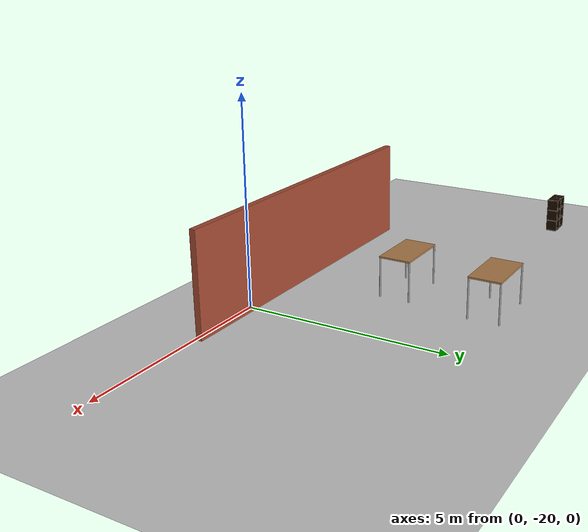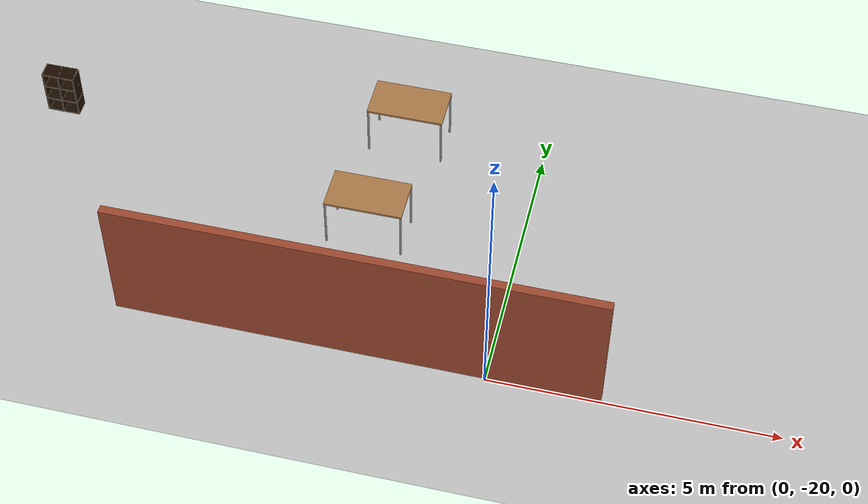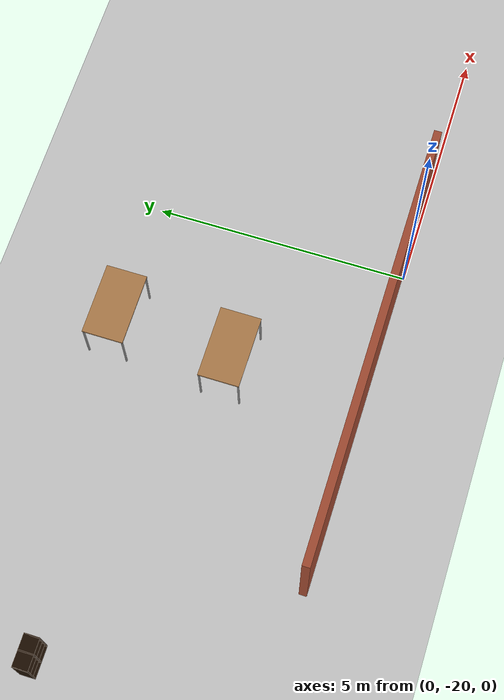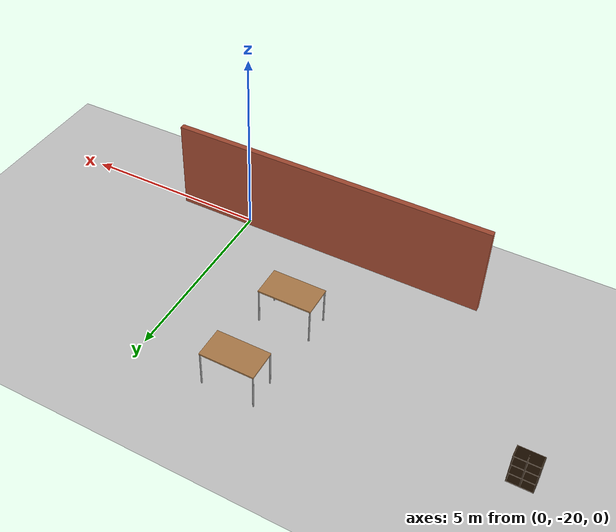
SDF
<sdf version="1.6">
 <world name="default">
  <model name="ground_plane">
   <static>1</static>
   <link name="link">
    <collision name="collision">
     <geometry><plane><normal>0 0 1</normal><size>100 100</size></plane></geometry>
     <surface><friction><ode><mu>100</mu><mu2>50</mu2></ode></friction></surface>
    </collision>
    <visual name="visual">
     <cast_shadows>0</cast_shadows>
     <geometry><plane><normal>0 0 1</normal><size>100 100</size></plane></geometry>
     <material>
      <script><uri>file://media/materials/scripts/gazebo.material</uri><name>Gazebo/Grey</name></script>
     </material>
    </visual>
   </link>
  </model>
  <model name="vital">
   <pose>1.2398 -2.19799 0 0 -0 0</pose>
   <link name="Wall_118">
    <collision name="Wall_118_Collision">
     <geometry><box><size>8.5 0.15 2.5</size></box></geometry>
     <pose>0 0 1.25 0 -0 0</pose>
    </collision>
    <visual name="Wall_118_Visual">
     <pose>0 0 1.25 0 -0 0</pose>
     <geometry><box><size>8.5 0.15 2.5</size></box></geometry>
     <material>
      <script><uri>file://media/materials/scripts/gazebo.material</uri><name>Gazebo/Bricks</name></script>
      <ambient>1 1 1 1</ambient>
     </material>
    </visual>
    <pose>-3.51851 -17.7063 0 0 -0 3.14159</pose>
   </link>
   <static>1</static>
  </model>
  <model name="table">
   <static>0</static>
   <link name="link">
    <collision name="surface">
     <pose>0 0 1 0 -0 0</pose>
     <geometry><box><size>1.5 0.8 0.03</size></box></geometry>
     <surface><friction><ode><mu>0.6</mu><mu2>0.6</mu2></ode></friction></surface>
    </collision>
    <visual name="visual1">
     <pose>0 0 1 0 -0 0</pose>
     <geometry><box><size>1.4 0.8 0.04</size></box></geometry>
     <material>
      <script><uri>file://media/materials/scripts/gazebo.material</uri><name>Gazebo/Wood</name></script>
     </material>
    </visual>
    <collision name="front_left_leg">
     <pose>0.68 0.38 0.5 0 -0 0</pose>
     <geometry><cylinder><radius>0.02</radius><length>1</length></cylinder></geometry>
    </collision>
    <visual name="front_left_leg">
     <pose>0.68 0.38 0.5 0 -0 0</pose>
     <geometry><cylinder><radius>0.02</radius><length>1</length></cylinder></geometry>
     <material>
      <script><uri>file://media/materials/scripts/gazebo.material</uri><name>Gazebo/Grey</name></script>
     </material>
    </visual>
    <collision name="front_right_leg">
     <pose>0.68 -0.38 0.5 0 -0 0</pose>
     <geometry><cylinder><radius>0.02</radius><length>1</length></cylinder></geometry>
    </collision>
    <visual name="front_right_leg">
     <pose>0.68 -0.38 0.5 0 -0 0</pose>
     <geometry><cylinder><radius>0.02</radius><length>1</length></cylinder></geometry>
     <material>
      <script><uri>file://media/materials/scripts/gazebo.material</uri><name>Gazebo/Grey</name></script>
     </material>
    </visual>
    <collision name="back_right_leg">
     <pose>-0.68 -0.38 0.5 0 -0 0</pose>
     <geometry><cylinder><radius>0.02</radius><length>1</length></cylinder></geometry>
    </collision>
    <visual name="back_right_leg">
     <pose>-0.68 -0.38 0.5 0 -0 0</pose>
     <geometry><cylinder><radius>0.02</radius><length>1</length></cylinder></geometry>
     <material>
      <script><uri>file://media/materials/scripts/gazebo.material</uri><name>Gazebo/Grey</name></script>
     </material>
    </visual>
    <collision name="back_left_leg">
     <pose>-0.68 0.38 0.5 0 -0 0</pose>
     <geometry><cylinder><radius>0.02</radius><length>1</length></cylinder></geometry>
    </collision>
    <visual name="back_left_leg">
     <pose>-0.68 0.38 0.5 0 -0 0</pose>
     <geometry><cylinder><radius>0.02</radius><length>1</length></cylinder></geometry>
     <material>
      <script><uri>file://media/materials/scripts/gazebo.material</uri><name>Gazebo/Grey</name></script>
     </material>
    </visual>
    <inertial>
     <inertia><ixx>1</ixx><ixy>0</ixy><ixz>0</ixz><iyy>1</iyy><iyz>0</iyz><izz>1</izz></inertia>
     <mass>1</mass>
    </inertial>
   </link>
   <pose>-2.70683 -17.3168 -1e-06 0 1e-06 0</pose>
  </model>
  <model name="table_0">
   <static>0</static>
   <link name="link">
    <collision name="surface">
     <pose>0 0 1 0 -0 0</pose>
     <geometry><box><size>1.5 0.8 0.03</size></box></geometry>
     <surface><friction><ode><mu>0.6</mu><mu2>0.6</mu2></ode></friction></surface>
    </collision>
    <visual name="visual1">
     <pose>0 0 1 0 -0 0</pose>
     <geometry><box><size>1.4 0.8 0.04</size></box></geometry>
     <material>
      <script><uri>file://media/materials/scripts/gazebo.material</uri><name>Gazebo/Wood</name></script>
     </material>
    </visual>
    <collision name="front_left_leg">
     <pose>0.68 0.38 0.5 0 -0 0</pose>
     <geometry><cylinder><radius>0.02</radius><length>1</length></cylinder></geometry>
    </collision>
    <visual name="front_left_leg">
     <pose>0.68 0.38 0.5 0 -0 0</pose>
     <geometry><cylinder><radius>0.02</radius><length>1</length></cylinder></geometry>
     <material>
      <script><uri>file://media/materials/scripts/gazebo.material</uri><name>Gazebo/Grey</name></script>
     </material>
    </visual>
    <collision name="front_right_leg">
     <pose>0.68 -0.38 0.5 0 -0 0</pose>
     <geometry><cylinder><radius>0.02</radius><length>1</length></cylinder></geometry>
    </collision>
    <visual name="front_right_leg">
     <pose>0.68 -0.38 0.5 0 -0 0</pose>
     <geometry><cylinder><radius>0.02</radius><length>1</length></cylinder></geometry>
     <material>
      <script><uri>file://media/materials/scripts/gazebo.material</uri><name>Gazebo/Grey</name></script>
     </material>
    </visual>
    <collision name="back_right_leg">
     <pose>-0.68 -0.38 0.5 0 -0 0</pose>
     <geometry><cylinder><radius>0.02</radius><length>1</length></cylinder></geometry>
    </collision>
    <visual name="back_right_leg">
     <pose>-0.68 -0.38 0.5 0 -0 0</pose>
     <geometry><cylinder><radius>0.02</radius><length>1</length></cylinder></geometry>
     <material>
      <script><uri>file://media/materials/scripts/gazebo.material</uri><name>Gazebo/Grey</name></script>
     </material>
    </visual>
    <collision name="back_left_leg">
     <pose>-0.68 0.38 0.5 0 -0 0</pose>
     <geometry><cylinder><radius>0.02</radius><length>1</length></cylinder></geometry>
    </collision>
    <visual name="back_left_leg">
     <pose>-0.68 0.38 0.5 0 -0 0</pose>
     <geometry><cylinder><radius>0.02</radius><length>1</length></cylinder></geometry>
     <material>
      <script><uri>file://media/materials/scripts/gazebo.material</uri><name>Gazebo/Grey</name></script>
     </material>
    </visual>
    <inertial>
     <inertia><ixx>1</ixx><ixy>0</ixy><ixz>0</ixz><iyy>1</iyy><iyz>0</iyz><izz>1</izz></inertia>
     <mass>1</mass>
    </inertial>
   </link>
   <pose>-2.52923 -14.9943 -7e-06 -1e-06 0 0</pose>
  </model>
  <model name="6_Cube_StorageE">
   <link name="Wall_0">
    <pose>0 0 0.01 0 -0 0</pose>
    <inertial>
     <mass>1.6201</mass>
     <inertia><ixx>0.0119</ixx><iyy>0.0631</iyy><izz>0.0513</izz><ixy>0</ixy><ixz>0</ixz><iyz>0</iyz></inertia>
    </inertial>
    <collision name="Wall_0_Collision"><geometry><box><size>0.616 0.296 0.02</size></box></geometry></collision>
    <visual name="Wall_0_Visual">
     <geometry><box><size>0.616 0.296 0.02</size></box></geometry>
     <material>
      <script><uri>file://media/materials/scripts/gazebo.material</uri><name>Gazebo/Grey</name></script>
      <ambient>0.105882 0.0509804 0 1</ambient>
     </material>
    </visual>
   </link>
   <joint name="0_2" type="fixed">
    <pose>-0.308 0 0 0 -0 0</pose>
    <parent>Wall_2</parent>
    <child>Wall_0</child>
    <axis>
     <xyz>1 0 0</xyz>
     <use_parent_model_frame>0</use_parent_model_frame>
     <limit><lower>-1e+16</lower><upper>1e+16</upper></limit>
    </axis>
   </joint>
   <joint name="0_12" type="fixed">
    <parent>Wall_12</parent>
    <child>Wall_0</child>
    <axis>
     <xyz>0 0 1</xyz>
     <use_parent_model_frame>0</use_parent_model_frame>
     <limit><lower>-1e+16</lower><upper>1e+16</upper></limit>
    </axis>
   </joint>
   <joint name="0_4" type="fixed">
    <pose>0.308 0 0 0 -0 0</pose>
    <parent>Wall_4</parent>
    <child>Wall_0</child>
    <axis>
     <xyz>1 0 0</xyz>
     <use_parent_model_frame>0</use_parent_model_frame>
     <limit><lower>-1e+16</lower><upper>1e+16</upper></limit>
    </axis>
   </joint>
   <link name="Wall_10">
    <pose>0 0 0.61 0 -0 0</pose>
    <inertial>
     <mass>1.6201</mass>
     <inertia><ixx>0.0119</ixx><iyy>0.0631</iyy><izz>0.0513</izz><ixy>0</ixy><ixz>0</ixz><iyz>0</iyz></inertia>
    </inertial>
    <collision name="Wall_10_Collision"><geometry><box><size>0.616 0.296 0.02</size></box></geometry></collision>
    <visual name="Wall_10_Visual">
     <geometry><box><size>0.616 0.296 0.02</size></box></geometry>
     <material>
      <script><uri>file://media/materials/scripts/gazebo.material</uri><name>Gazebo/Grey</name></script>
      <ambient>0.105882 0.0509804 0 1</ambient>
     </material>
    </visual>
   </link>
   <joint name="10_2" type="fixed">
    <pose>-0.308 0 0 0 -0 0</pose>
    <parent>Wall_2</parent>
    <child>Wall_10</child>
    <axis>
     <xyz>1 0 0</xyz>
     <use_parent_model_frame>0</use_parent_model_frame>
     <limit><lower>-1e+16</lower><upper>1e+16</upper></limit>
    </axis>
   </joint>
   <joint name="10_12" type="fixed">
    <parent>Wall_12</parent>
    <child>Wall_10</child>
    <axis>
     <xyz>0 0 1</xyz>
     <use_parent_model_frame>0</use_parent_model_frame>
     <limit><lower>-1e+16</lower><upper>1e+16</upper></limit>
    </axis>
   </joint>
   <joint name="10_4" type="fixed">
    <pose>0.308 0 0 0 -0 0</pose>
    <parent>Wall_4</parent>
    <child>Wall_10</child>
    <axis>
     <xyz>1 0 0</xyz>
     <use_parent_model_frame>0</use_parent_model_frame>
     <limit><lower>-1e+16</lower><upper>1e+16</upper></limit>
    </axis>
   </joint>
   <link name="Wall_12">
    <pose>0 0 0.4575 0 -0 0</pose>
    <inertial>
     <mass>2.4065</mass>
     <inertia><ixx>0.0177</ixx><iyy>0.1855</iyy><izz>0.168</izz><ixy>0</ixy><ixz>0</ixz><iyz>0</iyz></inertia>
    </inertial>
    <collision name="Wall_12_Collision"><geometry><box><size>0.02 0.296 0.915</size></box></geometry></collision>
    <visual name="Wall_12_Visual">
     <geometry><box><size>0.02 0.296 0.915</size></box></geometry>
     <material>
      <script><uri>file://media/materials/scripts/gazebo.material</uri><name>Gazebo/Grey</name></script>
      <ambient>0.105882 0.0509804 0 1</ambient>
     </material>
    </visual>
   </link>
   <link name="Wall_2">
    <pose>-0.298 0 0.4575 0 -0 0</pose>
    <inertial>
     <mass>2.4065</mass>
     <inertia><ixx>0.0177</ixx><iyy>0.1855</iyy><izz>0.168</izz><ixy>0</ixy><ixz>0</ixz><iyz>0</iyz></inertia>
    </inertial>
    <collision name="Wall_2_Collision"><geometry><box><size>0.02 0.296 0.915</size></box></geometry></collision>
    <visual name="Wall_2_Visual">
     <geometry><box><size>0.02 0.296 0.915</size></box></geometry>
     <material>
      <script><uri>file://media/materials/scripts/gazebo.material</uri><name>Gazebo/Grey</name></script>
      <ambient>0.105882 0.0509804 0 1</ambient>
     </material>
    </visual>
   </link>
   <link name="Wall_4">
    <pose>0.298 0 0.4575 0 -0 0</pose>
    <inertial>
     <mass>2.4065</mass>
     <inertia><ixx>0.0177</ixx><iyy>0.1855</iyy><izz>0.168</izz><ixy>0</ixy><ixz>0</ixz><iyz>0</iyz></inertia>
    </inertial>
    <collision name="Wall_4_Collision"><geometry><box><size>0.02 0.296 0.915</size></box></geometry></collision>
    <visual name="Wall_4_Visual">
     <geometry><box><size>0.02 0.296 0.915</size></box></geometry>
     <material>
      <script><uri>file://media/materials/scripts/gazebo.material</uri><name>Gazebo/Grey</name></script>
      <ambient>0.105882 0.0509804 0 1</ambient>
     </material>
    </visual>
   </link>
   <link name="Wall_6">
    <pose>0 0 0.905 0 -0 0</pose>
    <inertial>
     <mass>1.6201</mass>
     <inertia><ixx>0.0119</ixx><iyy>0.0631</iyy><izz>0.0513</izz><ixy>0</ixy><ixz>0</ixz><iyz>0</iyz></inertia>
    </inertial>
    <collision name="Wall_6_Collision"><geometry><box><size>0.616 0.296 0.02</size></box></geometry></collision>
    <visual name="Wall_6_Visual">
     <geometry><box><size>0.616 0.296 0.02</size></box></geometry>
     <material>
      <script><uri>file://media/materials/scripts/gazebo.material</uri><name>Gazebo/Grey</name></script>
      <ambient>0.105882 0.0509804 0 1</ambient>
     </material>
    </visual>
   </link>
   <joint name="6_2" type="fixed">
    <pose>-0.308 0 0 0 -0 0</pose>
    <parent>Wall_2</parent>
    <child>Wall_6</child>
    <axis>
     <xyz>2 0 0</xyz>
     <use_parent_model_frame>0</use_parent_model_frame>
     <limit><lower>-1e+16</lower><upper>1e+16</upper></limit>
    </axis>
   </joint>
   <joint name="6_12" type="fixed">
    <parent>Wall_12</parent>
    <child>Wall_6</child>
    <axis>
     <xyz>0 0 1</xyz>
     <use_parent_model_frame>0</use_parent_model_frame>
     <limit><lower>-1e+16</lower><upper>1e+16</upper></limit>
    </axis>
   </joint>
   <joint name="6_4" type="fixed">
    <pose>0.308 0 0 0 -0 0</pose>
    <parent>Wall_4</parent>
    <child>Wall_6</child>
    <axis>
     <xyz>1 0 0</xyz>
     <use_parent_model_frame>0</use_parent_model_frame>
     <limit><lower>-1e+16</lower><upper>1e+16</upper></limit>
    </axis>
   </joint>
   <link name="Wall_8">
    <pose>0 0 0.305 0 -0 0</pose>
    <inertial>
     <mass>1.6201</mass>
     <inertia><ixx>0.0119</ixx><iyy>0.0631</iyy><izz>0.0513</izz><ixy>0</ixy><ixz>0</ixz><iyz>0</iyz></inertia>
    </inertial>
    <collision name="Wall_8_Collision"><geometry><box><size>0.616 0.296 0.02</size></box></geometry></collision>
    <visual name="Wall_8_Visual">
     <geometry><box><size>0.616 0.296 0.02</size></box></geometry>
     <material>
      <script><uri>file://media/materials/scripts/gazebo.material</uri><name>Gazebo/Grey</name></script>
      <ambient>0.105882 0.0509804 0 1</ambient>
     </material>
    </visual>
   </link>
   <joint name="8_2" type="fixed">
    <pose>-0.308 0 0 0 -0 0</pose>
    <parent>Wall_2</parent>
    <child>Wall_8</child>
    <axis>
     <xyz>1 0 0</xyz>
     <use_parent_model_frame>0</use_parent_model_frame>
     <limit><lower>-1e+16</lower><upper>1e+16</upper></limit>
    </axis>
   </joint>
   <joint name="8_12" type="fixed">
    <parent>Wall_12</parent>
    <child>Wall_8</child>
    <axis>
     <xyz>0 0 1</xyz>
     <use_parent_model_frame>0</use_parent_model_frame>
     <limit><lower>-1e+16</lower><upper>1e+16</upper></limit>
    </axis>
   </joint>
   <joint name="8_4" type="fixed">
    <pose>0.308 0 0 0 -0 0</pose>
    <parent>Wall_4</parent>
    <child>Wall_8</child>
    <axis>
     <xyz>1 0 0</xyz>
     <use_parent_model_frame>0</use_parent_model_frame>
     <limit><lower>-1e+16</lower><upper>1e+16</upper></limit>
    </axis>
   </joint>
   <static>1</static>
   <pose>-9.04252 -15.6768 0 0 -0 0</pose>
  </model>
 </world>
</sdf>
